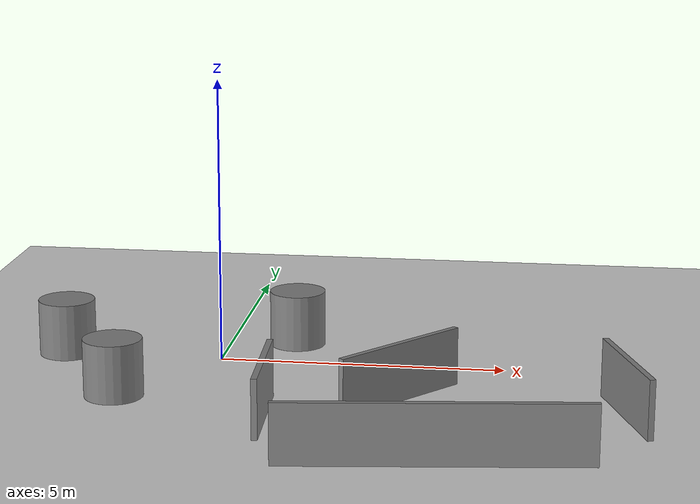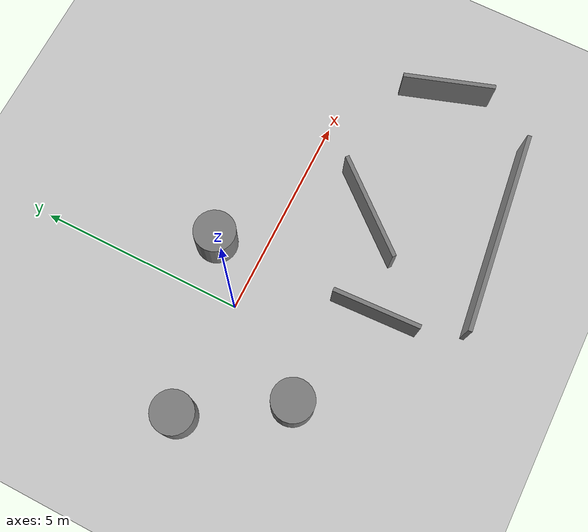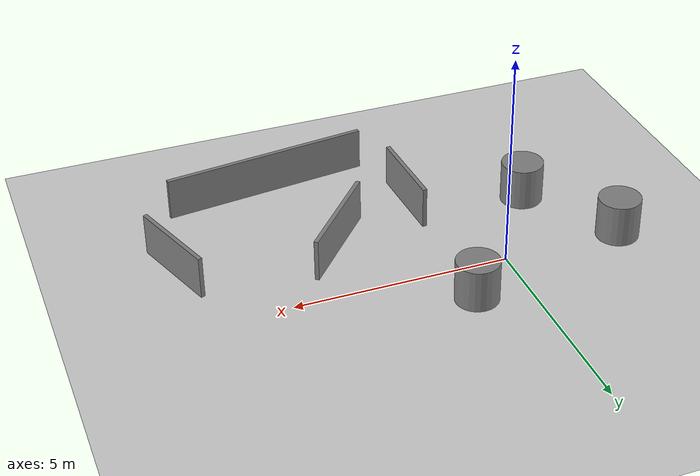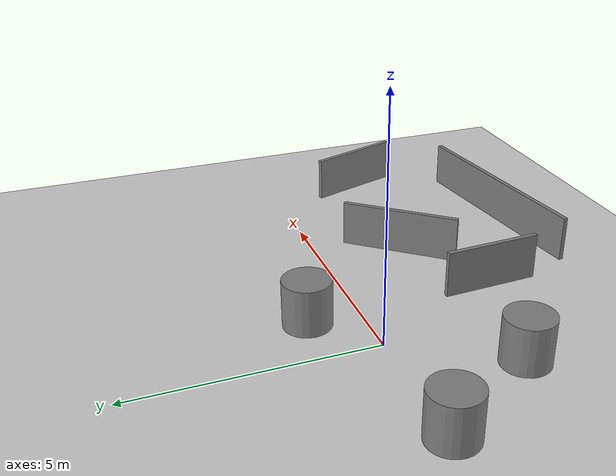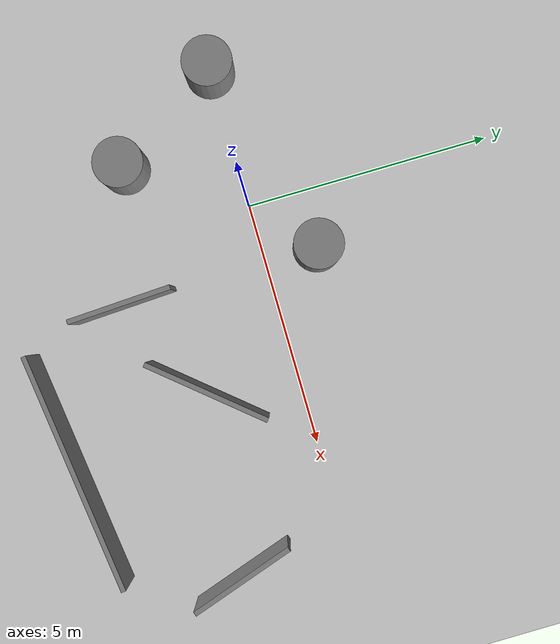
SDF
<?xml version='1.0' encoding='utf-8'?>
<sdf version="1.9">
  <world name="ddgdd">
    <physics name="1ms" type="dart">
      <max_step_size>0.001</max_step_size>
      <real_time_factor>1</real_time_factor>
      <real_time_update_rate>1000</real_time_update_rate>
    </physics>
    <plugin name="gz::sim::systems::Physics" filename="gz-sim-physics-system" />
    <plugin name="gz::sim::systems::UserCommands" filename="gz-sim-user-commands-system" />
    <plugin name="gz::sim::systems::SceneBroadcaster" filename="gz-sim-scene-broadcaster-system" />
    <plugin name="gz::sim::systems::Contact" filename="gz-sim-contact-system" />
    <plugin name="gz::sim::systems::Sensors" filename="gz-sim-sensors-system">
      <render_engine>ogre2</render_engine>
    </plugin>
    <gravity>0 0 -9.8</gravity>
    <magnetic_field>6e-06 2.3e-05 -4.2e-05</magnetic_field>
    <atmosphere type="adiabatic" />
    <scene>
      <ambient>0.4 0.4 0.4 1</ambient>
      <background>0.7 0.7 0.7 1</background>
      <shadows>true</shadows>
    </scene>
    <model name="ground_plane">
      <static>true</static>
      <link name="link">
        <collision name="collision">
          <geometry>
            <plane>
              <normal>0 0 1</normal>
              <size>100 100</size>
            </plane>
          </geometry>
          <surface>
            <friction>
              <ode />
            </friction>
            <bounce />
            <contact />
          </surface>
        </collision>
        <visual name="visual">
          <geometry>
            <plane>
              <normal>0 0 1</normal>
              <size>100 100</size>
            </plane>
          </geometry>
          <material>
            <ambient>0.8 0.8 0.8 1</ambient>
            <diffuse>0.8 0.8 0.8 1</diffuse>
            <specular>0.8 0.8 0.8 1</specular>
          </material>
        </visual>
        <pose>0 0 0 0 -0 0</pose>
        <inertial>
          <pose>0 0 0 0 -0 0</pose>
          <mass>1</mass>
          <inertia>
            <ixx>1</ixx>
            <ixy>0</ixy>
            <ixz>0</ixz>
            <iyy>1</iyy>
            <iyz>0</iyz>
            <izz>1</izz>
          </inertia>
        </inertial>
        <enable_wind>false</enable_wind>
      </link>
      <pose>0 0 0 0 -0 0</pose>
      <self_collide>false</self_collide>
    </model>
    <light name="sun" type="directional">
      <pose>0 0 10 0 -0 0</pose>
      <cast_shadows>true</cast_shadows>
      <intensity>1</intensity>
      <direction>-0.5 0.1 -0.9</direction>
      <diffuse>0.8 0.8 0.8 1</diffuse>
      <specular>0.2 0.2 0.2 1</specular>
      <attenuation>
        <range>1000</range>
        <linear>0.01</linear>
        <constant>0.90000000000000002</constant>
        <quadratic>0.001</quadratic>
      </attenuation>
      <spot>
        <inner_angle>0</inner_angle>
        <outer_angle>0</outer_angle>
        <falloff>0</falloff>
      </spot>
    </light>
  <model name="wall_1">
            <static>true</static>
            <type>wall</type>
            <pose>3.350000 -1.800000 0.500000 0 0 0.866302</pose>
            <link name="link">
                <collision name="collision">
                    <geometry><box><size>2.624881 0.100000 1.000000</size></box></geometry>
                </collision>
                <visual name="visual">
                    <geometry><box><size>2.624881 0.100000 1.000000</size></box></geometry>
                    <material>
                        <diffuse>0.5 0.5 0.5 1</diffuse>
                    </material>
                </visual></link></model><model name="wall_2">
            <static>true</static>
            <type>wall</type>
            <pose>7.050000 -2.150000 0.500000 0 0 -1.249046</pose>
            <link name="link">
                <collision name="collision">
                    <geometry><box><size>2.213594 0.100000 1.000000</size></box></geometry>
                </collision>
                <visual name="visual">
                    <geometry><box><size>2.213594 0.100000 1.000000</size></box></geometry>
                    <material>
                        <diffuse>0.5 0.5 0.5 1</diffuse>
                    </material>
                </visual></link></model><model name="wall_3">
            <static>true</static>
            <type>wall</type>
            <pose>4.150000 -4.700000 0.500000 0 0 -3.019750</pose>
            <link name="link">
                <collision name="collision">
                    <geometry><box><size>4.936598 0.100000 1.000000</size></box></geometry>
                </collision>
                <visual name="visual">
                    <geometry><box><size>4.936598 0.100000 1.000000</size></box></geometry>
                    <material>
                        <diffuse>0.5 0.5 0.5 1</diffuse>
                    </material>
                </visual></link></model><model name="wall_4">
            <static>true</static>
            <type>wall</type>
            <pose>1.250000 -2.950000 0.500000 0 0 1.618379</pose>
            <link name="link">
                <collision name="collision">
                    <geometry><box><size>2.102380 0.100000 1.000000</size></box></geometry>
                </collision>
                <visual name="visual">
                    <geometry><box><size>2.102380 0.100000 1.000000</size></box></geometry>
                    <material>
                        <diffuse>0.5 0.5 0.5 1</diffuse>
                    </material>
                </visual></link></model><model name="cylinder_1">
            <static>true</static>
            <type>cylinder</type>
            <pose>-2.800000 -0.000000 0.500000 0 0 0</pose>
            <link name="link">
                <collision name="collision">
                    <geometry><cylinder><radius>0.500000</radius><length>1.000000</length></cylinder></geometry>
                </collision>
                <visual name="visual">
                    <geometry><cylinder><radius>0.500000</radius><length>1.000000</length></cylinder></geometry>
                    <material>
                        <diffuse>0.5 0.5 0.5 1</diffuse>
                    </material>
                </visual></link></model><model name="cylinder_3">
            <static>true</static>
            <type>cylinder</type>
            <pose>-1.400000 -2.200000 0.500000 0 0 0</pose>
            <link name="link">
                <collision name="collision">
                    <geometry><cylinder><radius>0.500000</radius><length>1.000000</length></cylinder></geometry>
                </collision>
                <visual name="visual">
                    <geometry><cylinder><radius>0.500000</radius><length>1.000000</length></cylinder></geometry>
                    <material>
                        <diffuse>0.5 0.5 0.5 1</diffuse>
                    </material>
                </visual></link></model><model name="cylinder_2">
            <static>false</static>
            <type>cylinder</type>
            <pose>1.200000 1.100000 0.500000 0 0 0</pose>
            <link name="link">
                <collision name="collision">
                    <geometry><cylinder><radius>0.500000</radius><length>1.000000</length></cylinder></geometry>
                </collision>
                <visual name="visual">
                    <geometry><cylinder><radius>0.500000</radius><length>1.000000</length></cylinder></geometry>
                    <material>
                        <diffuse>0.5 0.5 0.5 1</diffuse>
                    </material>
                </visual><inertial>
                <mass>785.398163</mass>
                <inertia>
                    <ixx>114.537232</ixx><ixy>0</ixy><ixz>0</ixz>
                    <iyy>114.537232</iyy><iyz>0</iyz>
                    <izz>98.174770</izz>
                </inertia>
            </inertial><gravity>false</gravity></link><motion><type>linear</type><velocity>1.000000</velocity><std>0.100000</std><point><x>1.900000</x><y>-0.600000</y></point><point><x>-0.400000</x><y>3.100000</y></point></motion></model></world>
</sdf>
